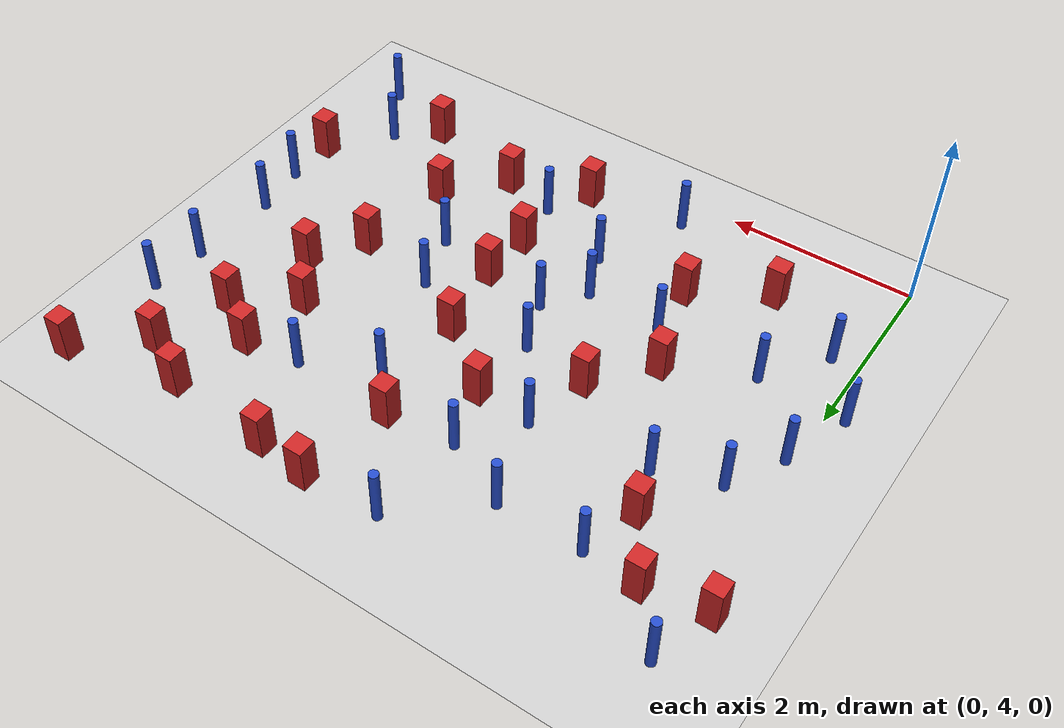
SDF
<sdf version="1.6">
 <world name="default">
  <model name="ground_plane">
   <static>1</static>
   <link name="link">
    <collision name="collision">
     <geometry><plane><normal>0 0 1</normal><size>100 100</size></plane></geometry>
     <surface><friction><ode><mu>100</mu><mu2>50</mu2></ode></friction></surface>
    </collision>
    <visual name="visual">
     <cast_shadows>0</cast_shadows>
     <geometry><plane><normal>0 0 1</normal><size>100 100</size></plane></geometry>
     <material>
      <ambient>1.0 1.0 1.0 1.0</ambient>
      <diffuse>0.8 0.8 0.8 1.0</diffuse>
      <specular>0.01 0.01 0.01 1.000000</specular>
     </material>
    </visual>
   </link>
  </model>
  <model name="square_post_obstacle4">
   <static>true</static>
   <pose>2.06318571931 6.94088861574 1.91545236811e-07 -7.35059704564e-06 1.12565212e-07 2.39332434364e-05</pose>
   <link name="link">
    <pose>0 0 0.25 0 -0 0</pose>
    <inertial>
     <mass>100</mass>
     <inertia>
      <ixx>0.166667</ixx>
      <ixy>0</ixy>
      <ixz>0</ixz>
      <iyy>0.166667</iyy>
      <iyz>0</iyz>
      <izz>0.166667</izz>
     </inertia>
    </inertial>
    <collision name="collision"><geometry><box><size>.2 .2 .5</size></box></geometry></collision>
    <visual name="visual">
     <geometry><box><size>.2 .2 .5</size></box></geometry>
     <material>
      <script><name>Gazebo/Red</name><uri>file://media/materials/scripts/gazebo.material</uri></script>
     </material>
    </visual>
   </link>
  </model>
  <model name="pole_obstacle7">
   <static>true</static>
   <pose>2.65087221747 8.22384268109 7.38925637345e-09 -8.47170692793e-08 1.24976764408e-08 -1.74513093041e-07</pose>
   <link name="link">
    <pose>0 0 0.3 0 -0 0</pose>
    <inertial>
     <mass>1</mass>
     <inertia><ixx>0.145833</ixx><ixy>0</ixy><ixz>0</ixz><iyy>0.145833</iyy><iyz>0</iyz><izz>0.125</izz></inertia>
    </inertial>
    <collision name="collision">
     <geometry><cylinder><radius>0.05</radius><length>.6</length></cylinder></geometry>
    </collision>
    <visual name="visual">
     <geometry><cylinder><radius>0.05</radius><length>.6</length></cylinder></geometry>
     <material>
      <script><name>Gazebo/Blue</name><uri>file://media/materials/scripts/gazebo.material</uri></script>
     </material>
    </visual>
   </link>
  </model>
  <model name="square_post_obstacle18">
   <static>true</static>
   <pose>4.97279943262 6.55647392584 1.91545236811e-07 -7.35059704564e-06 1.12565212e-07 2.39332434364e-05</pose>
   <link name="link">
    <pose>0 0 0.25 0 -0 0</pose>
    <inertial>
     <mass>100</mass>
     <inertia>
      <ixx>0.166667</ixx>
      <ixy>0</ixy>
      <ixz>0</ixz>
      <iyy>0.166667</iyy>
      <iyz>0</iyz>
      <izz>0.166667</izz>
     </inertia>
    </inertial>
    <collision name="collision"><geometry><box><size>.2 .2 .5</size></box></geometry></collision>
    <visual name="visual">
     <geometry><box><size>.2 .2 .5</size></box></geometry>
     <material>
      <script><name>Gazebo/Red</name><uri>file://media/materials/scripts/gazebo.material</uri></script>
     </material>
    </visual>
   </link>
  </model>
  <model name="pole_obstacle13">
   <static>true</static>
   <pose>0.0326588759433 9.12981638308 7.38925637345e-09 -8.47170692796e-08 1.24976764747e-08 -1.74513093035e-07</pose>
   <link name="link">
    <pose>0 0 0.3 0 -0 0</pose>
    <inertial>
     <mass>1</mass>
     <inertia><ixx>0.145833</ixx><ixy>0</ixy><ixz>0</ixz><iyy>0.145833</iyy><iyz>0</iyz><izz>0.125</izz></inertia>
    </inertial>
    <collision name="collision">
     <geometry><cylinder><radius>0.05</radius><length>.6</length></cylinder></geometry>
    </collision>
    <visual name="visual">
     <geometry><cylinder><radius>0.05</radius><length>.6</length></cylinder></geometry>
     <material>
      <script><name>Gazebo/Blue</name><uri>file://media/materials/scripts/gazebo.material</uri></script>
     </material>
    </visual>
   </link>
  </model>
  <model name="square_post_obstacle26">
   <static>true</static>
   <pose>5.78017067269 8.8644291459 1.91545236811e-07 -7.35059704564e-06 1.12565212e-07 2.39332434364e-05</pose>
   <link name="link">
    <pose>0 0 0.25 0 -0 0</pose>
    <inertial>
     <mass>100</mass>
     <inertia>
      <ixx>0.166667</ixx>
      <ixy>0</ixy>
      <ixz>0</ixz>
      <iyy>0.166667</iyy>
      <iyz>0</iyz>
      <izz>0.166667</izz>
     </inertia>
    </inertial>
    <collision name="collision"><geometry><box><size>.2 .2 .5</size></box></geometry></collision>
    <visual name="visual">
     <geometry><box><size>.2 .2 .5</size></box></geometry>
     <material>
      <script><name>Gazebo/Red</name><uri>file://media/materials/scripts/gazebo.material</uri></script>
     </material>
    </visual>
   </link>
  </model>
  <model name="square_post_obstacle31">
   <static>true</static>
   <pose>-0.175177287374 8.49121086558 1.91545236811e-07 -7.35059704564e-06 1.12565212e-07 2.39332434364e-05</pose>
   <link name="link">
    <pose>0 0 0.25 0 -0 0</pose>
    <inertial>
     <mass>100</mass>
     <inertia>
      <ixx>0.166667</ixx>
      <ixy>0</ixy>
      <ixz>0</ixz>
      <iyy>0.166667</iyy>
      <iyz>0</iyz>
      <izz>0.166667</izz>
     </inertia>
    </inertial>
    <collision name="collision"><geometry><box><size>.2 .2 .5</size></box></geometry></collision>
    <visual name="visual">
     <geometry><box><size>.2 .2 .5</size></box></geometry>
     <material>
      <script><name>Gazebo/Red</name><uri>file://media/materials/scripts/gazebo.material</uri></script>
     </material>
    </visual>
   </link>
  </model>
  <model name="pole_obstacle29">
   <static>true</static>
   <pose>1.87095248127 5.87187131063 7.38925637345e-09 -8.47170692799e-08 1.24976765033e-08 -1.74513093018e-07</pose>
   <link name="link">
    <pose>0 0 0.3 0 -0 0</pose>
    <inertial>
     <mass>1</mass>
     <inertia><ixx>0.145833</ixx><ixy>0</ixy><ixz>0</ixz><iyy>0.145833</iyy><iyz>0</iyz><izz>0.125</izz></inertia>
    </inertial>
    <collision name="collision">
     <geometry><cylinder><radius>0.05</radius><length>.6</length></cylinder></geometry>
    </collision>
    <visual name="visual">
     <geometry><cylinder><radius>0.05</radius><length>.6</length></cylinder></geometry>
     <material>
      <script><name>Gazebo/Blue</name><uri>file://media/materials/scripts/gazebo.material</uri></script>
     </material>
    </visual>
   </link>
  </model>
  <model name="square_post_obstacle35">
   <static>true</static>
   <pose>5.33604303783 7.09942264219 1.91545236811e-07 -7.35059704564e-06 1.12565212e-07 2.39332434364e-05</pose>
   <link name="link">
    <pose>0 0 0.25 0 -0 0</pose>
    <inertial>
     <mass>100</mass>
     <inertia>
      <ixx>0.166667</ixx>
      <ixy>0</ixy>
      <ixz>0</ixz>
      <iyy>0.166667</iyy>
      <iyz>0</iyz>
      <izz>0.166667</izz>
     </inertia>
    </inertial>
    <collision name="collision"><geometry><box><size>.2 .2 .5</size></box></geometry></collision>
    <visual name="visual">
     <geometry><box><size>.2 .2 .5</size></box></geometry>
     <material>
      <script><name>Gazebo/Red</name><uri>file://media/materials/scripts/gazebo.material</uri></script>
     </material>
    </visual>
   </link>
  </model>
  <model name="pole_obstacle46">
   <static>true</static>
   <pose>6.33807885505 7.65720346406 7.38925637345e-09 -8.47170692796e-08 1.24976764786e-08 -1.74513093032e-07</pose>
   <link name="link">
    <pose>0 0 0.3 0 -0 0</pose>
    <inertial>
     <mass>1</mass>
     <inertia><ixx>0.145833</ixx><ixy>0</ixy><ixz>0</ixz><iyy>0.145833</iyy><iyz>0</iyz><izz>0.125</izz></inertia>
    </inertial>
    <collision name="collision">
     <geometry><cylinder><radius>0.05</radius><length>.6</length></cylinder></geometry>
    </collision>
    <visual name="visual">
     <geometry><cylinder><radius>0.05</radius><length>.6</length></cylinder></geometry>
     <material>
      <script><name>Gazebo/Blue</name><uri>file://media/materials/scripts/gazebo.material</uri></script>
     </material>
    </visual>
   </link>
  </model>
  <model name="pole_obstacle52">
   <static>true</static>
   <pose>4.14138066562 6.67501556292 7.38925637345e-09 -8.47170692796e-08 1.24976764786e-08 -1.74513093032e-07</pose>
   <link name="link">
    <pose>0 0 0.3 0 -0 0</pose>
    <inertial>
     <mass>1</mass>
     <inertia><ixx>0.145833</ixx><ixy>0</ixy><ixz>0</ixz><iyy>0.145833</iyy><iyz>0</iyz><izz>0.125</izz></inertia>
    </inertial>
    <collision name="collision">
     <geometry><cylinder><radius>0.05</radius><length>.6</length></cylinder></geometry>
    </collision>
    <visual name="visual">
     <geometry><cylinder><radius>0.05</radius><length>.6</length></cylinder></geometry>
     <material>
      <script><name>Gazebo/Blue</name><uri>file://media/materials/scripts/gazebo.material</uri></script>
     </material>
    </visual>
   </link>
  </model>
  <model name="pole_obstacle53">
   <static>true</static>
   <pose>0.753390189887 5.89071316331 7.38925637345e-09 -8.471706928e-08 1.24976765086e-08 -1.74513093015e-07</pose>
   <link name="link">
    <pose>0 0 0.3 0 -0 0</pose>
    <inertial>
     <mass>1</mass>
     <inertia><ixx>0.145833</ixx><ixy>0</ixy><ixz>0</ixz><iyy>0.145833</iyy><iyz>0</iyz><izz>0.125</izz></inertia>
    </inertial>
    <collision name="collision">
     <geometry><cylinder><radius>0.05</radius><length>.6</length></cylinder></geometry>
    </collision>
    <visual name="visual">
     <geometry><cylinder><radius>0.05</radius><length>.6</length></cylinder></geometry>
     <material>
      <script><name>Gazebo/Blue</name><uri>file://media/materials/scripts/gazebo.material</uri></script>
     </material>
    </visual>
   </link>
  </model>
  <model name="pole_obstacle56">
   <static>true</static>
   <pose>0.284867399708 5.25197809608 7.38925637345e-09 -8.47170692799e-08 1.24976765101e-08 -1.74513093014e-07</pose>
   <link name="link">
    <pose>0 0 0.3 0 -0 0</pose>
    <inertial>
     <mass>1</mass>
     <inertia><ixx>0.145833</ixx><ixy>0</ixy><ixz>0</ixz><iyy>0.145833</iyy><iyz>0</iyz><izz>0.125</izz></inertia>
    </inertial>
    <collision name="collision">
     <geometry><cylinder><radius>0.05</radius><length>.6</length></cylinder></geometry>
    </collision>
    <visual name="visual">
     <geometry><cylinder><radius>0.05</radius><length>.6</length></cylinder></geometry>
     <material>
      <script><name>Gazebo/Blue</name><uri>file://media/materials/scripts/gazebo.material</uri></script>
     </material>
    </visual>
   </link>
  </model>
  <model name="square_post_obstacle61">
   <static>true</static>
   <pose>4.81871137699 5.48276332418 1.91545236811e-07 -7.35059704564e-06 1.12565212e-07 2.39332434364e-05</pose>
   <link name="link">
    <pose>0 0 0.25 0 -0 0</pose>
    <inertial>
     <mass>100</mass>
     <inertia>
      <ixx>0.166667</ixx>
      <ixy>0</ixy>
      <ixz>0</ixz>
      <iyy>0.166667</iyy>
      <iyz>0</iyz>
      <izz>0.166667</izz>
     </inertia>
    </inertial>
    <collision name="collision"><geometry><box><size>.2 .2 .5</size></box></geometry></collision>
    <visual name="visual">
     <geometry><box><size>.2 .2 .5</size></box></geometry>
     <material>
      <script><name>Gazebo/Red</name><uri>file://media/materials/scripts/gazebo.material</uri></script>
     </material>
    </visual>
   </link>
  </model>
  <model name="pole_obstacle60">
   <static>true</static>
   <pose>2.2371369238 7.62035661411 7.38925637345e-09 -8.47170692798e-08 1.24976765033e-08 -1.74513093019e-07</pose>
   <link name="link">
    <pose>0 0 0.3 0 -0 0</pose>
    <inertial>
     <mass>1</mass>
     <inertia><ixx>0.145833</ixx><ixy>0</ixy><ixz>0</ixz><iyy>0.145833</iyy><iyz>0</iyz><izz>0.125</izz></inertia>
    </inertial>
    <collision name="collision">
     <geometry><cylinder><radius>0.05</radius><length>.6</length></cylinder></geometry>
    </collision>
    <visual name="visual">
     <geometry><cylinder><radius>0.05</radius><length>.6</length></cylinder></geometry>
     <material>
      <script><name>Gazebo/Blue</name><uri>file://media/materials/scripts/gazebo.material</uri></script>
     </material>
    </visual>
   </link>
  </model>
  <model name="square_post_obstacle70">
   <static>true</static>
   <pose>3.46476633992 4.57669756563 1.91545236811e-07 -7.35059704564e-06 1.12565212e-07 2.39332434364e-05</pose>
   <link name="link">
    <pose>0 0 0.25 0 -0 0</pose>
    <inertial>
     <mass>100</mass>
     <inertia>
      <ixx>0.166667</ixx>
      <ixy>0</ixy>
      <ixz>0</ixz>
      <iyy>0.166667</iyy>
      <iyz>0</iyz>
      <izz>0.166667</izz>
     </inertia>
    </inertial>
    <collision name="collision"><geometry><box><size>.2 .2 .5</size></box></geometry></collision>
    <visual name="visual">
     <geometry><box><size>.2 .2 .5</size></box></geometry>
     <material>
      <script><name>Gazebo/Red</name><uri>file://media/materials/scripts/gazebo.material</uri></script>
     </material>
    </visual>
   </link>
  </model>
  <model name="pole_obstacle68">
   <static>true</static>
   <pose>1.94686331611 8.55509828264 7.38925637345e-09 -8.47170692798e-08 1.24976764881e-08 -1.74513093027e-07</pose>
   <link name="link">
    <pose>0 0 0.3 0 -0 0</pose>
    <inertial>
     <mass>1</mass>
     <inertia><ixx>0.145833</ixx><ixy>0</ixy><ixz>0</ixz><iyy>0.145833</iyy><iyz>0</iyz><izz>0.125</izz></inertia>
    </inertial>
    <collision name="collision">
     <geometry><cylinder><radius>0.05</radius><length>.6</length></cylinder></geometry>
    </collision>
    <visual name="visual">
     <geometry><cylinder><radius>0.05</radius><length>.6</length></cylinder></geometry>
     <material>
      <script><name>Gazebo/Blue</name><uri>file://media/materials/scripts/gazebo.material</uri></script>
     </material>
    </visual>
   </link>
  </model>
  <model name="pole_obstacle71">
   <static>true</static>
   <pose>5.88539618806 4.94170691853 7.38925637345e-09 -8.47170692796e-08 1.24976764786e-08 -1.74513093032e-07</pose>
   <link name="link">
    <pose>0 0 0.3 0 -0 0</pose>
    <inertial>
     <mass>1</mass>
     <inertia><ixx>0.145833</ixx><ixy>0</ixy><ixz>0</ixz><iyy>0.145833</iyy><iyz>0</iyz><izz>0.125</izz></inertia>
    </inertial>
    <collision name="collision">
     <geometry><cylinder><radius>0.05</radius><length>.6</length></cylinder></geometry>
    </collision>
    <visual name="visual">
     <geometry><cylinder><radius>0.05</radius><length>.6</length></cylinder></geometry>
     <material>
      <script><name>Gazebo/Blue</name><uri>file://media/materials/scripts/gazebo.material</uri></script>
     </material>
    </visual>
   </link>
  </model>
  <model name="pole_obstacle80">
   <static>true</static>
   <pose>6.29403033736 4.31489915328 7.38925637345e-09 -8.47170692796e-08 1.24976764786e-08 -1.74513093032e-07</pose>
   <link name="link">
    <pose>0 0 0.3 0 -0 0</pose>
    <inertial>
     <mass>1</mass>
     <inertia><ixx>0.145833</ixx><ixy>0</ixy><ixz>0</ixz><iyy>0.145833</iyy><iyz>0</iyz><izz>0.125</izz></inertia>
    </inertial>
    <collision name="collision">
     <geometry><cylinder><radius>0.05</radius><length>.6</length></cylinder></geometry>
    </collision>
    <visual name="visual">
     <geometry><cylinder><radius>0.05</radius><length>.6</length></cylinder></geometry>
     <material>
      <script><name>Gazebo/Blue</name><uri>file://media/materials/scripts/gazebo.material</uri></script>
     </material>
    </visual>
   </link>
  </model>
  <model name="square_post_obstacle85">
   <static>true</static>
   <pose>0.866244085707 7.96544899386 1.91545236811e-07 -7.35059704564e-06 1.12565212e-07 2.39332434364e-05</pose>
   <link name="link">
    <pose>0 0 0.25 0 -0 0</pose>
    <inertial>
     <mass>100</mass>
     <inertia>
      <ixx>0.166667</ixx>
      <ixy>0</ixy>
      <ixz>0</ixz>
      <iyy>0.166667</iyy>
      <iyz>0</iyz>
      <izz>0.166667</izz>
     </inertia>
    </inertial>
    <collision name="collision"><geometry><box><size>.2 .2 .5</size></box></geometry></collision>
    <visual name="visual">
     <geometry><box><size>.2 .2 .5</size></box></geometry>
     <material>
      <script><name>Gazebo/Red</name><uri>file://media/materials/scripts/gazebo.material</uri></script>
     </material>
    </visual>
   </link>
  </model>
  <model name="square_post_obstacle87">
   <static>true</static>
   <pose>1.11177612765 4.84172996317 1.91545236811e-07 -7.35059704564e-06 1.12565212e-07 2.39332434364e-05</pose>
   <link name="link">
    <pose>0 0 0.25 0 -0 0</pose>
    <inertial>
     <mass>100</mass>
     <inertia>
      <ixx>0.166667</ixx>
      <ixy>0</ixy>
      <ixz>0</ixz>
      <iyy>0.166667</iyy>
      <iyz>0</iyz>
      <izz>0.166667</izz>
     </inertia>
    </inertial>
    <collision name="collision"><geometry><box><size>.2 .2 .5</size></box></geometry></collision>
    <visual name="visual">
     <geometry><box><size>.2 .2 .5</size></box></geometry>
     <material>
      <script><name>Gazebo/Red</name><uri>file://media/materials/scripts/gazebo.material</uri></script>
     </material>
    </visual>
   </link>
  </model>
  <model name="pole_obstacle100">
   <static>true</static>
   <pose>2.79037812667 6.82282059442 7.38925637345e-09 -8.47170692798e-08 1.24976765033e-08 -1.74513093019e-07</pose>
   <link name="link">
    <pose>0 0 0.3 0 -0 0</pose>
    <inertial>
     <mass>1</mass>
     <inertia><ixx>0.145833</ixx><ixy>0</ixy><ixz>0</ixz><iyy>0.145833</iyy><iyz>0</iyz><izz>0.125</izz></inertia>
    </inertial>
    <collision name="collision">
     <geometry><cylinder><radius>0.05</radius><length>.6</length></cylinder></geometry>
    </collision>
    <visual name="visual">
     <geometry><cylinder><radius>0.05</radius><length>.6</length></cylinder></geometry>
     <material>
      <script><name>Gazebo/Blue</name><uri>file://media/materials/scripts/gazebo.material</uri></script>
     </material>
    </visual>
   </link>
  </model>
  <model name="square_post_obstacle94">
   <static>true</static>
   <pose>4.95079775711 7.61538720757 1.91545236811e-07 -7.35059704564e-06 1.12565212e-07 2.39332434364e-05</pose>
   <link name="link">
    <pose>0 0 0.25 0 -0 0</pose>
    <inertial>
     <mass>100</mass>
     <inertia>
      <ixx>0.166667</ixx>
      <ixy>0</ixy>
      <ixz>0</ixz>
      <iyy>0.166667</iyy>
      <iyz>0</iyz>
      <izz>0.166667</izz>
     </inertia>
    </inertial>
    <collision name="collision"><geometry><box><size>.2 .2 .5</size></box></geometry></collision>
    <visual name="visual">
     <geometry><box><size>.2 .2 .5</size></box></geometry>
     <material>
      <script><name>Gazebo/Red</name><uri>file://media/materials/scripts/gazebo.material</uri></script>
     </material>
    </visual>
   </link>
  </model>
  <model name="pole_obstacle108">
   <static>true</static>
   <pose>6.3649582037 6.11222969593 7.38925637345e-09 -8.47170692796e-08 1.24976764786e-08 -1.74513093032e-07</pose>
   <link name="link">
    <pose>0 0 0.3 0 -0 0</pose>
    <inertial>
     <mass>1</mass>
     <inertia><ixx>0.145833</ixx><ixy>0</ixy><ixz>0</ixz><iyy>0.145833</iyy><iyz>0</iyz><izz>0.125</izz></inertia>
    </inertial>
    <collision name="collision">
     <geometry><cylinder><radius>0.05</radius><length>.6</length></cylinder></geometry>
    </collision>
    <visual name="visual">
     <geometry><cylinder><radius>0.05</radius><length>.6</length></cylinder></geometry>
     <material>
      <script><name>Gazebo/Blue</name><uri>file://media/materials/scripts/gazebo.material</uri></script>
     </material>
    </visual>
   </link>
  </model>
  <model name="pole_obstacle110">
   <static>true</static>
   <pose>1.03040499141 7.45614976665 7.38925637345e-09 -8.47170692799e-08 1.24976765021e-08 -1.74513093019e-07</pose>
   <link name="link">
    <pose>0 0 0.3 0 -0 0</pose>
    <inertial>
     <mass>1</mass>
     <inertia><ixx>0.145833</ixx><ixy>0</ixy><ixz>0</ixz><iyy>0.145833</iyy><iyz>0</iyz><izz>0.125</izz></inertia>
    </inertial>
    <collision name="collision">
     <geometry><cylinder><radius>0.05</radius><length>.6</length></cylinder></geometry>
    </collision>
    <visual name="visual">
     <geometry><cylinder><radius>0.05</radius><length>.6</length></cylinder></geometry>
     <material>
      <script><name>Gazebo/Blue</name><uri>file://media/materials/scripts/gazebo.material</uri></script>
     </material>
    </visual>
   </link>
  </model>
  <model name="pole_obstacle118">
   <static>true</static>
   <pose>1.05370539114 8.54597292514 7.38925637345e-09 -8.47170692798e-08 1.24976764881e-08 -1.74513093027e-07</pose>
   <link name="link">
    <pose>0 0 0.3 0 -0 0</pose>
    <inertial>
     <mass>1</mass>
     <inertia><ixx>0.145833</ixx><ixy>0</ixy><ixz>0</ixz><iyy>0.145833</iyy><iyz>0</iyz><izz>0.125</izz></inertia>
    </inertial>
    <collision name="collision">
     <geometry><cylinder><radius>0.05</radius><length>.6</length></cylinder></geometry>
    </collision>
    <visual name="visual">
     <geometry><cylinder><radius>0.05</radius><length>.6</length></cylinder></geometry>
     <material>
      <script><name>Gazebo/Blue</name><uri>file://media/materials/scripts/gazebo.material</uri></script>
     </material>
    </visual>
   </link>
  </model>
  <model name="square_post_obstacle105">
   <static>true</static>
   <pose>3.53663714466 9.31171636211 1.91545236811e-07 -7.35059704564e-06 1.12565212e-07 2.39332434364e-05</pose>
   <link name="link">
    <pose>0 0 0.25 0 -0 0</pose>
    <inertial>
     <mass>100</mass>
     <inertia>
      <ixx>0.166667</ixx>
      <ixy>0</ixy>
      <ixz>0</ixz>
      <iyy>0.166667</iyy>
      <iyz>0</iyz>
      <izz>0.166667</izz>
     </inertia>
    </inertial>
    <collision name="collision"><geometry><box><size>.2 .2 .5</size></box></geometry></collision>
    <visual name="visual">
     <geometry><box><size>.2 .2 .5</size></box></geometry>
     <material>
      <script><name>Gazebo/Red</name><uri>file://media/materials/scripts/gazebo.material</uri></script>
     </material>
    </visual>
   </link>
  </model>
  <model name="square_post_obstacle107">
   <static>true</static>
   <pose>5.56142497512 8.05036049522 1.91545236811e-07 -7.35059704564e-06 1.12565212e-07 2.39332434364e-05</pose>
   <link name="link">
    <pose>0 0 0.25 0 -0 0</pose>
    <inertial>
     <mass>100</mass>
     <inertia>
      <ixx>0.166667</ixx>
      <ixy>0</ixy>
      <ixz>0</ixz>
      <iyy>0.166667</iyy>
      <iyz>0</iyz>
      <izz>0.166667</izz>
     </inertia>
    </inertial>
    <collision name="collision"><geometry><box><size>.2 .2 .5</size></box></geometry></collision>
    <visual name="visual">
     <geometry><box><size>.2 .2 .5</size></box></geometry>
     <material>
      <script><name>Gazebo/Red</name><uri>file://media/materials/scripts/gazebo.material</uri></script>
     </material>
    </visual>
   </link>
  </model>
  <model name="pole_obstacle119">
   <static>true</static>
   <pose>2.44280454255 4.38746614575 7.38925637345e-09 -8.47170692798e-08 1.24976765033e-08 -1.74513093019e-07</pose>
   <link name="link">
    <pose>0 0 0.3 0 -0 0</pose>
    <inertial>
     <mass>1</mass>
     <inertia><ixx>0.145833</ixx><ixy>0</ixy><ixz>0</ixz><iyy>0.145833</iyy><iyz>0</iyz><izz>0.125</izz></inertia>
    </inertial>
    <collision name="collision">
     <geometry><cylinder><radius>0.05</radius><length>.6</length></cylinder></geometry>
    </collision>
    <visual name="visual">
     <geometry><cylinder><radius>0.05</radius><length>.6</length></cylinder></geometry>
     <material>
      <script><name>Gazebo/Blue</name><uri>file://media/materials/scripts/gazebo.material</uri></script>
     </material>
    </visual>
   </link>
  </model>
  <model name="square_post_obstacle111">
   <static>true</static>
   <pose>5.06022979897 8.36742570673 1.91545236811e-07 -7.35059704564e-06 1.12565212e-07 2.39332434364e-05</pose>
   <link name="link">
    <pose>0 0 0.25 0 -0 0</pose>
    <inertial>
     <mass>100</mass>
     <inertia>
      <ixx>0.166667</ixx>
      <ixy>0</ixy>
      <ixz>0</ixz>
      <iyy>0.166667</iyy>
      <iyz>0</iyz>
      <izz>0.166667</izz>
     </inertia>
    </inertial>
    <collision name="collision"><geometry><box><size>.2 .2 .5</size></box></geometry></collision>
    <visual name="visual">
     <geometry><box><size>.2 .2 .5</size></box></geometry>
     <material>
      <script><name>Gazebo/Red</name><uri>file://media/materials/scripts/gazebo.material</uri></script>
     </material>
    </visual>
   </link>
  </model>
  <model name="pole_obstacle121">
   <static>true</static>
   <pose>0.39597609289 7.22278596772 7.38925637345e-09 -8.471706928e-08 1.24976765079e-08 -1.74513093015e-07</pose>
   <link name="link">
    <pose>0 0 0.3 0 -0 0</pose>
    <inertial>
     <mass>1</mass>
     <inertia><ixx>0.145833</ixx><ixy>0</ixy><ixz>0</ixz><iyy>0.145833</iyy><iyz>0</iyz><izz>0.125</izz></inertia>
    </inertial>
    <collision name="collision">
     <geometry><cylinder><radius>0.05</radius><length>.6</length></cylinder></geometry>
    </collision>
    <visual name="visual">
     <geometry><cylinder><radius>0.05</radius><length>.6</length></cylinder></geometry>
     <material>
      <script><name>Gazebo/Blue</name><uri>file://media/materials/scripts/gazebo.material</uri></script>
     </material>
    </visual>
   </link>
  </model>
  <model name="square_post_obstacle115">
   <static>true</static>
   <pose>1.5800321002 6.33668657827 1.91545236811e-07 -7.35059704564e-06 1.12565212e-07 2.39332434364e-05</pose>
   <link name="link">
    <pose>0 0 0.25 0 -0 0</pose>
    <inertial>
     <mass>100</mass>
     <inertia>
      <ixx>0.166667</ixx>
      <ixy>0</ixy>
      <ixz>0</ixz>
      <iyy>0.166667</iyy>
      <iyz>0</iyz>
      <izz>0.166667</izz>
     </inertia>
    </inertial>
    <collision name="collision"><geometry><box><size>.2 .2 .5</size></box></geometry></collision>
    <visual name="visual">
     <geometry><box><size>.2 .2 .5</size></box></geometry>
     <material>
      <script><name>Gazebo/Red</name><uri>file://media/materials/scripts/gazebo.material</uri></script>
     </material>
    </visual>
   </link>
  </model>
  <model name="pole_obstacle134">
   <static>true</static>
   <pose>2.73558861885 9.25768630038 7.38925637345e-09 -8.47170692793e-08 1.24976764408e-08 -1.74513093041e-07</pose>
   <link name="link">
    <pose>0 0 0.3 0 -0 0</pose>
    <inertial>
     <mass>1</mass>
     <inertia><ixx>0.145833</ixx><ixy>0</ixy><ixz>0</ixz><iyy>0.145833</iyy><iyz>0</iyz><izz>0.125</izz></inertia>
    </inertial>
    <collision name="collision">
     <geometry><cylinder><radius>0.05</radius><length>.6</length></cylinder></geometry>
    </collision>
    <visual name="visual">
     <geometry><cylinder><radius>0.05</radius><length>.6</length></cylinder></geometry>
     <material>
      <script><name>Gazebo/Blue</name><uri>file://media/materials/scripts/gazebo.material</uri></script>
     </material>
    </visual>
   </link>
  </model>
  <model name="square_post_obstacle117">
   <static>true</static>
   <pose>3.52700043805 7.06159688236 1.91545236811e-07 -7.35059704564e-06 1.12565212e-07 2.39332434364e-05</pose>
   <link name="link">
    <pose>0 0 0.25 0 -0 0</pose>
    <inertial>
     <mass>100</mass>
     <inertia>
      <ixx>0.166667</ixx>
      <ixy>0</ixy>
      <ixz>0</ixz>
      <iyy>0.166667</iyy>
      <iyz>0</iyz>
      <izz>0.166667</izz>
     </inertia>
    </inertial>
    <collision name="collision"><geometry><box><size>.2 .2 .5</size></box></geometry></collision>
    <visual name="visual">
     <geometry><box><size>.2 .2 .5</size></box></geometry>
     <material>
      <script><name>Gazebo/Red</name><uri>file://media/materials/scripts/gazebo.material</uri></script>
     </material>
    </visual>
   </link>
  </model>
  <model name="pole_obstacle142">
   <static>true</static>
   <pose>6.38473821375 8.27522287918 7.38925637345e-09 -8.471706928e-08 1.24976765081e-08 -1.74513093015e-07</pose>
   <link name="link">
    <pose>0 0 0.3 0 -0 0</pose>
    <inertial>
     <mass>1</mass>
     <inertia><ixx>0.145833</ixx><ixy>0</ixy><ixz>0</ixz><iyy>0.145833</iyy><iyz>0</iyz><izz>0.125</izz></inertia>
    </inertial>
    <collision name="collision">
     <geometry><cylinder><radius>0.05</radius><length>.6</length></cylinder></geometry>
    </collision>
    <visual name="visual">
     <geometry><cylinder><radius>0.05</radius><length>.6</length></cylinder></geometry>
     <material>
      <script><name>Gazebo/Blue</name><uri>file://media/materials/scripts/gazebo.material</uri></script>
     </material>
    </visual>
   </link>
  </model>
  <model name="square_post_obstacle131">
   <static>true</static>
   <pose>5.24170172763 9.15270300326 1.91545236811e-07 -7.35059704564e-06 1.12565212e-07 2.39332434364e-05</pose>
   <link name="link">
    <pose>0 0 0.25 0 -0 0</pose>
    <inertial>
     <mass>100</mass>
     <inertia>
      <ixx>0.166667</ixx>
      <ixy>0</ixy>
      <ixz>0</ixz>
      <iyy>0.166667</iyy>
      <iyz>0</iyz>
      <izz>0.166667</izz>
     </inertia>
    </inertial>
    <collision name="collision"><geometry><box><size>.2 .2 .5</size></box></geometry></collision>
    <visual name="visual">
     <geometry><box><size>.2 .2 .5</size></box></geometry>
     <material>
      <script><name>Gazebo/Red</name><uri>file://media/materials/scripts/gazebo.material</uri></script>
     </material>
    </visual>
   </link>
  </model>
  <model name="square_post_obstacle132">
   <static>true</static>
   <pose>3.67125548986 6.21759390383 1.91545236811e-07 -7.35059704564e-06 1.12565212e-07 2.39332434364e-05</pose>
   <link name="link">
    <pose>0 0 0.25 0 -0 0</pose>
    <inertial>
     <mass>100</mass>
     <inertia>
      <ixx>0.166667</ixx>
      <ixy>0</ixy>
      <ixz>0</ixz>
      <iyy>0.166667</iyy>
      <iyz>0</iyz>
      <izz>0.166667</izz>
     </inertia>
    </inertial>
    <collision name="collision"><geometry><box><size>.2 .2 .5</size></box></geometry></collision>
    <visual name="visual">
     <geometry><box><size>.2 .2 .5</size></box></geometry>
     <material>
      <script><name>Gazebo/Red</name><uri>file://media/materials/scripts/gazebo.material</uri></script>
     </material>
    </visual>
   </link>
  </model>
  <model name="pole_obstacle143">
   <static>true</static>
   <pose>3.73390358168 7.90888366785 7.38925637345e-09 -8.47170692798e-08 1.24976765033e-08 -1.74513093019e-07</pose>
   <link name="link">
    <pose>0 0 0.3 0 -0 0</pose>
    <inertial>
     <mass>1</mass>
     <inertia><ixx>0.145833</ixx><ixy>0</ixy><ixz>0</ixz><iyy>0.145833</iyy><iyz>0</iyz><izz>0.125</izz></inertia>
    </inertial>
    <collision name="collision">
     <geometry><cylinder><radius>0.05</radius><length>.6</length></cylinder></geometry>
    </collision>
    <visual name="visual">
     <geometry><cylinder><radius>0.05</radius><length>.6</length></cylinder></geometry>
     <material>
      <script><name>Gazebo/Blue</name><uri>file://media/materials/scripts/gazebo.material</uri></script>
     </material>
    </visual>
   </link>
  </model>
  <model name="square_post_obstacle135">
   <static>true</static>
   <pose>0.471636437121 8.60778729759 1.91545236811e-07 -7.35059704564e-06 1.12565212e-07 2.39332434364e-05</pose>
   <link name="link">
    <pose>0 0 0.25 0 -0 0</pose>
    <inertial>
     <mass>100</mass>
     <inertia>
      <ixx>0.166667</ixx>
      <ixy>0</ixy>
      <ixz>0</ixz>
      <iyy>0.166667</iyy>
      <iyz>0</iyz>
      <izz>0.166667</izz>
     </inertia>
    </inertial>
    <collision name="collision"><geometry><box><size>.2 .2 .5</size></box></geometry></collision>
    <visual name="visual">
     <geometry><box><size>.2 .2 .5</size></box></geometry>
     <material>
      <script><name>Gazebo/Red</name><uri>file://media/materials/scripts/gazebo.material</uri></script>
     </material>
    </visual>
   </link>
  </model>
  <model name="pole_obstacle149">
   <static>true</static>
   <pose>4.48826470075 8.26396283602 7.38925637345e-09 -8.471706928e-08 1.24976765081e-08 -1.74513093015e-07</pose>
   <link name="link">
    <pose>0 0 0.3 0 -0 0</pose>
    <inertial>
     <mass>1</mass>
     <inertia><ixx>0.145833</ixx><ixy>0</ixy><ixz>0</ixz><iyy>0.145833</iyy><iyz>0</iyz><izz>0.125</izz></inertia>
    </inertial>
    <collision name="collision">
     <geometry><cylinder><radius>0.05</radius><length>.6</length></cylinder></geometry>
    </collision>
    <visual name="visual">
     <geometry><cylinder><radius>0.05</radius><length>.6</length></cylinder></geometry>
     <material>
      <script><name>Gazebo/Blue</name><uri>file://media/materials/scripts/gazebo.material</uri></script>
     </material>
    </visual>
   </link>
  </model>
  <model name="pole_obstacle159">
   <static>true</static>
   <pose>2.88429133041 5.35604887481 7.38925637345e-09 -8.47170692798e-08 1.24976765033e-08 -1.74513093019e-07</pose>
   <link name="link">
    <pose>0 0 0.3 0 -0 0</pose>
    <inertial>
     <mass>1</mass>
     <inertia><ixx>0.145833</ixx><ixy>0</ixy><ixz>0</ixz><iyy>0.145833</iyy><iyz>0</iyz><izz>0.125</izz></inertia>
    </inertial>
    <collision name="collision">
     <geometry><cylinder><radius>0.05</radius><length>.6</length></cylinder></geometry>
    </collision>
    <visual name="visual">
     <geometry><cylinder><radius>0.05</radius><length>.6</length></cylinder></geometry>
     <material>
      <script><name>Gazebo/Blue</name><uri>file://media/materials/scripts/gazebo.material</uri></script>
     </material>
    </visual>
   </link>
  </model>
  <model name="square_post_obstacle153">
   <static>true</static>
   <pose>6.44041514694 9.41555362021 1.91545236811e-07 -7.35059704564e-06 1.12565212e-07 2.39332434364e-05</pose>
   <link name="link">
    <pose>0 0 0.25 0 -0 0</pose>
    <inertial>
     <mass>100</mass>
     <inertia>
      <ixx>0.166667</ixx>
      <ixy>0</ixy>
      <ixz>0</ixz>
      <iyy>0.166667</iyy>
      <iyz>0</iyz>
      <izz>0.166667</izz>
     </inertia>
    </inertial>
    <collision name="collision"><geometry><box><size>.2 .2 .5</size></box></geometry></collision>
    <visual name="visual">
     <geometry><box><size>.2 .2 .5</size></box></geometry>
     <material>
      <script><name>Gazebo/Red</name><uri>file://media/materials/scripts/gazebo.material</uri></script>
     </material>
    </visual>
   </link>
  </model>
  <model name="pole_obstacle167">
   <static>true</static>
   <pose>2.68348336928 5.846784399 7.38925637345e-09 -8.47170692798e-08 1.24976765033e-08 -1.74513093019e-07</pose>
   <link name="link">
    <pose>0 0 0.3 0 -0 0</pose>
    <inertial>
     <mass>1</mass>
     <inertia><ixx>0.145833</ixx><ixy>0</ixy><ixz>0</ixz><iyy>0.145833</iyy><iyz>0</iyz><izz>0.125</izz></inertia>
    </inertial>
    <collision name="collision">
     <geometry><cylinder><radius>0.05</radius><length>.6</length></cylinder></geometry>
    </collision>
    <visual name="visual">
     <geometry><cylinder><radius>0.05</radius><length>.6</length></cylinder></geometry>
     <material>
      <script><name>Gazebo/Blue</name><uri>file://media/materials/scripts/gazebo.material</uri></script>
     </material>
    </visual>
   </link>
  </model>
  <model name="square_post_obstacle160">
   <static>true</static>
   <pose>2.83028404155 7.60099690782 1.91545236811e-07 -7.35059704564e-06 1.12565212e-07 2.39332434364e-05</pose>
   <link name="link">
    <pose>0 0 0.25 0 -0 0</pose>
    <inertial>
     <mass>100</mass>
     <inertia>
      <ixx>0.166667</ixx>
      <ixy>0</ixy>
      <ixz>0</ixz>
      <iyy>0.166667</iyy>
      <iyz>0</iyz>
      <izz>0.166667</izz>
     </inertia>
    </inertial>
    <collision name="collision"><geometry><box><size>.2 .2 .5</size></box></geometry></collision>
    <visual name="visual">
     <geometry><box><size>.2 .2 .5</size></box></geometry>
     <material>
      <script><name>Gazebo/Red</name><uri>file://media/materials/scripts/gazebo.material</uri></script>
     </material>
    </visual>
   </link>
  </model>
  <model name="square_post_obstacle167">
   <static>true</static>
   <pose>5.43515222033 4.61408607051 1.91545236811e-07 -7.35059704564e-06 1.12565212e-07 2.39332434364e-05</pose>
   <link name="link">
    <pose>0 0 0.25 0 -0 0</pose>
    <inertial>
     <mass>100</mass>
     <inertia>
      <ixx>0.166667</ixx>
      <ixy>0</ixy>
      <ixz>0</ixz>
      <iyy>0.166667</iyy>
      <iyz>0</iyz>
      <izz>0.166667</izz>
     </inertia>
    </inertial>
    <collision name="collision"><geometry><box><size>.2 .2 .5</size></box></geometry></collision>
    <visual name="visual">
     <geometry><box><size>.2 .2 .5</size></box></geometry>
     <material>
      <script><name>Gazebo/Red</name><uri>file://media/materials/scripts/gazebo.material</uri></script>
     </material>
    </visual>
   </link>
  </model>
  <model name="pole_obstacle181">
   <static>true</static>
   <pose>6.28885547836 6.69485050383 7.38925637345e-09 -8.47170692796e-08 1.24976764786e-08 -1.74513093032e-07</pose>
   <link name="link">
    <pose>0 0 0.3 0 -0 0</pose>
    <inertial>
     <mass>1</mass>
     <inertia><ixx>0.145833</ixx><ixy>0</ixy><ixz>0</ixz><iyy>0.145833</iyy><iyz>0</iyz><izz>0.125</izz></inertia>
    </inertial>
    <collision name="collision">
     <geometry><cylinder><radius>0.05</radius><length>.6</length></cylinder></geometry>
    </collision>
    <visual name="visual">
     <geometry><cylinder><radius>0.05</radius><length>.6</length></cylinder></geometry>
     <material>
      <script><name>Gazebo/Blue</name><uri>file://media/materials/scripts/gazebo.material</uri></script>
     </material>
    </visual>
   </link>
  </model>
  <model name="pole_obstacle187">
   <static>true</static>
   <pose>-0.169609602877 5.91172399942 7.38925637345e-09 -8.47170692799e-08 1.24976765043e-08 -1.74513093019e-07</pose>
   <link name="link">
    <pose>0 0 0.3 0 -0 0</pose>
    <inertial>
     <mass>1</mass>
     <inertia><ixx>0.145833</ixx><ixy>0</ixy><ixz>0</ixz><iyy>0.145833</iyy><iyz>0</iyz><izz>0.125</izz></inertia>
    </inertial>
    <collision name="collision">
     <geometry><cylinder><radius>0.05</radius><length>.6</length></cylinder></geometry>
    </collision>
    <visual name="visual">
     <geometry><cylinder><radius>0.05</radius><length>.6</length></cylinder></geometry>
     <material>
      <script><name>Gazebo/Blue</name><uri>file://media/materials/scripts/gazebo.material</uri></script>
     </material>
    </visual>
   </link>
  </model>
  <model name="pole_obstacle188">
   <static>true</static>
   <pose>3.00757688178 6.2718642893 7.38925637345e-09 -8.47170692798e-08 1.24976765033e-08 -1.74513093019e-07</pose>
   <link name="link">
    <pose>0 0 0.3 0 -0 0</pose>
    <inertial>
     <mass>1</mass>
     <inertia><ixx>0.145833</ixx><ixy>0</ixy><ixz>0</ixz><iyy>0.145833</iyy><iyz>0</iyz><izz>0.125</izz></inertia>
    </inertial>
    <collision name="collision">
     <geometry><cylinder><radius>0.05</radius><length>.6</length></cylinder></geometry>
    </collision>
    <visual name="visual">
     <geometry><cylinder><radius>0.05</radius><length>.6</length></cylinder></geometry>
     <material>
      <script><name>Gazebo/Blue</name><uri>file://media/materials/scripts/gazebo.material</uri></script>
     </material>
    </visual>
   </link>
  </model>
  <model name="square_post_obstacle175">
   <static>true</static>
   <pose>6.35159598264 5.56699334496 1.91545236811e-07 -7.35059704564e-06 1.12565212e-07 2.39332434364e-05</pose>
   <link name="link">
    <pose>0 0 0.25 0 -0 0</pose>
    <inertial>
     <mass>100</mass>
     <inertia>
      <ixx>0.166667</ixx>
      <ixy>0</ixy>
      <ixz>0</ixz>
      <iyy>0.166667</iyy>
      <iyz>0</iyz>
      <izz>0.166667</izz>
     </inertia>
    </inertial>
    <collision name="collision"><geometry><box><size>.2 .2 .5</size></box></geometry></collision>
    <visual name="visual">
     <geometry><box><size>.2 .2 .5</size></box></geometry>
     <material>
      <script><name>Gazebo/Red</name><uri>file://media/materials/scripts/gazebo.material</uri></script>
     </material>
    </visual>
   </link>
  </model>
  <model name="square_post_obstacle179">
   <static>true</static>
   <pose>1.88883719029 5.32123757379 1.91545236811e-07 -7.35059704564e-06 1.12565212e-07 2.39332434364e-05</pose>
   <link name="link">
    <pose>0 0 0.25 0 -0 0</pose>
    <inertial>
     <mass>100</mass>
     <inertia>
      <ixx>0.166667</ixx>
      <ixy>0</ixy>
      <ixz>0</ixz>
      <iyy>0.166667</iyy>
      <iyz>0</iyz>
      <izz>0.166667</izz>
     </inertia>
    </inertial>
    <collision name="collision"><geometry><box><size>.2 .2 .5</size></box></geometry></collision>
    <visual name="visual">
     <geometry><box><size>.2 .2 .5</size></box></geometry>
     <material>
      <script><name>Gazebo/Red</name><uri>file://media/materials/scripts/gazebo.material</uri></script>
     </material>
    </visual>
   </link>
  </model>
  <model name="square_post_obstacle183">
   <static>true</static>
   <pose>4.09747941257 9.24263496748 1.91545236811e-07 -7.35059704564e-06 1.12565212e-07 2.39332434364e-05</pose>
   <link name="link">
    <pose>0 0 0.25 0 -0 0</pose>
    <inertial>
     <mass>100</mass>
     <inertia>
      <ixx>0.166667</ixx>
      <ixy>0</ixy>
      <ixz>0</ixz>
      <iyy>0.166667</iyy>
      <iyz>0</iyz>
      <izz>0.166667</izz>
     </inertia>
    </inertial>
    <collision name="collision"><geometry><box><size>.2 .2 .5</size></box></geometry></collision>
    <visual name="visual">
     <geometry><box><size>.2 .2 .5</size></box></geometry>
     <material>
      <script><name>Gazebo/Red</name><uri>file://media/materials/scripts/gazebo.material</uri></script>
     </material>
    </visual>
   </link>
  </model>
  <model name="square_post_obstacle187">
   <static>true</static>
   <pose>3.37132186837 8.31313212175 1.91545236811e-07 -7.35059704564e-06 1.12565212e-07 2.39332434364e-05</pose>
   <link name="link">
    <pose>0 0 0.25 0 -0 0</pose>
    <inertial>
     <mass>100</mass>
     <inertia>
      <ixx>0.166667</ixx>
      <ixy>0</ixy>
      <ixz>0</ixz>
      <iyy>0.166667</iyy>
      <iyz>0</iyz>
      <izz>0.166667</izz>
     </inertia>
    </inertial>
    <collision name="collision"><geometry><box><size>.2 .2 .5</size></box></geometry></collision>
    <visual name="visual">
     <geometry><box><size>.2 .2 .5</size></box></geometry>
     <material>
      <script><name>Gazebo/Red</name><uri>file://media/materials/scripts/gazebo.material</uri></script>
     </material>
    </visual>
   </link>
  </model>
  <model name="square_post_obstacle190">
   <static>true</static>
   <pose>3.65351259589 5.61624224731 1.91545236811e-07 -7.35059704564e-06 1.12565212e-07 2.39332434364e-05</pose>
   <link name="link">
    <pose>0 0 0.25 0 -0 0</pose>
    <inertial>
     <mass>100</mass>
     <inertia>
      <ixx>0.166667</ixx>
      <ixy>0</ixy>
      <ixz>0</ixz>
      <iyy>0.166667</iyy>
      <iyz>0</iyz>
      <izz>0.166667</izz>
     </inertia>
    </inertial>
    <collision name="collision"><geometry><box><size>.2 .2 .5</size></box></geometry></collision>
    <visual name="visual">
     <geometry><box><size>.2 .2 .5</size></box></geometry>
     <material>
      <script><name>Gazebo/Red</name><uri>file://media/materials/scripts/gazebo.material</uri></script>
     </material>
    </visual>
   </link>
  </model>
  <model name="pole_obstacle199">
   <static>true</static>
   <pose>0.077715755646 6.64356800027 7.38925637345e-09 -8.47170692799e-08 1.24976765062e-08 -1.74513093018e-07</pose>
   <link name="link">
    <pose>0 0 0.3 0 -0 0</pose>
    <inertial>
     <mass>1</mass>
     <inertia><ixx>0.145833</ixx><ixy>0</ixy><ixz>0</ixz><iyy>0.145833</iyy><iyz>0</iyz><izz>0.125</izz></inertia>
    </inertial>
    <collision name="collision">
     <geometry><cylinder><radius>0.05</radius><length>.6</length></cylinder></geometry>
    </collision>
    <visual name="visual">
     <geometry><cylinder><radius>0.05</radius><length>.6</length></cylinder></geometry>
     <material>
      <script><name>Gazebo/Blue</name><uri>file://media/materials/scripts/gazebo.material</uri></script>
     </material>
    </visual>
   </link>
  </model>
  <model name="pole_obstacle207">
   <static>true</static>
   <pose>4.34258003949 6.04804536997 7.38925637345e-09 -8.47170692796e-08 1.24976764786e-08 -1.74513093032e-07</pose>
   <link name="link">
    <pose>0 0 0.3 0 -0 0</pose>
    <inertial>
     <mass>1</mass>
     <inertia><ixx>0.145833</ixx><ixy>0</ixy><ixz>0</ixz><iyy>0.145833</iyy><iyz>0</iyz><izz>0.125</izz></inertia>
    </inertial>
    <collision name="collision">
     <geometry><cylinder><radius>0.05</radius><length>.6</length></cylinder></geometry>
    </collision>
    <visual name="visual">
     <geometry><cylinder><radius>0.05</radius><length>.6</length></cylinder></geometry>
     <material>
      <script><name>Gazebo/Blue</name><uri>file://media/materials/scripts/gazebo.material</uri></script>
     </material>
    </visual>
   </link>
  </model>
  <model name="pole_obstacle215">
   <static>true</static>
   <pose>3.73949680373 5.01410933604 7.38925637345e-09 -8.47170692798e-08 1.24976765033e-08 -1.74513093019e-07</pose>
   <link name="link">
    <pose>0 0 0.3 0 -0 0</pose>
    <inertial>
     <mass>1</mass>
     <inertia><ixx>0.145833</ixx><ixy>0</ixy><ixz>0</ixz><iyy>0.145833</iyy><iyz>0</iyz><izz>0.125</izz></inertia>
    </inertial>
    <collision name="collision">
     <geometry><cylinder><radius>0.05</radius><length>.6</length></cylinder></geometry>
    </collision>
    <visual name="visual">
     <geometry><cylinder><radius>0.05</radius><length>.6</length></cylinder></geometry>
     <material>
      <script><name>Gazebo/Blue</name><uri>file://media/materials/scripts/gazebo.material</uri></script>
     </material>
    </visual>
   </link>
  </model>
  <model name="square_post_obstacle210">
   <static>true</static>
   <pose>4.3016999648 4.89128998808 1.91545236811e-07 -7.35059704564e-06 1.12565212e-07 2.39332434364e-05</pose>
   <link name="link">
    <pose>0 0 0.25 0 -0 0</pose>
    <inertial>
     <mass>100</mass>
     <inertia>
      <ixx>0.166667</ixx>
      <ixy>0</ixy>
      <ixz>0</ixz>
      <iyy>0.166667</iyy>
      <iyz>0</iyz>
      <izz>0.166667</izz>
     </inertia>
    </inertial>
    <collision name="collision"><geometry><box><size>.2 .2 .5</size></box></geometry></collision>
    <visual name="visual">
     <geometry><box><size>.2 .2 .5</size></box></geometry>
     <material>
      <script><name>Gazebo/Red</name><uri>file://media/materials/scripts/gazebo.material</uri></script>
     </material>
    </visual>
   </link>
  </model>
 </world>
</sdf>
